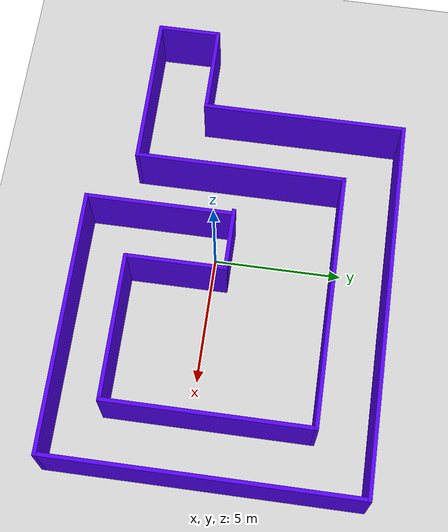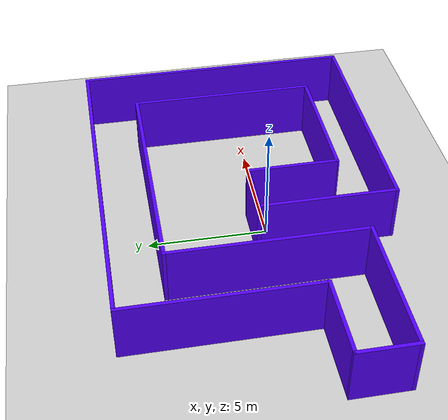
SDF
<sdf version="1.6">
 <world name="default">
  <light name="sun" type="directional">
   <pose>0 0 10 0 -0 0</pose>
   <diffuse>0.8 0.8 0.8 1</diffuse>
   <specular>0.1 0.1 0.1 1</specular>
   <attenuation>
    <range>1000</range>
    <constant>0.9</constant>
    <linear>0.01</linear>
    <quadratic>0.001</quadratic>
   </attenuation>
   <direction>-0.5 0.5 -1</direction>
  </light>
  <model name="ground_plane">
   <static>1</static>
   <link name="link">
    <collision name="collision">
     <geometry><plane><normal>0 0 1</normal><size>100 100</size></plane></geometry>
     <surface><friction><ode><mu>100</mu><mu2>50</mu2></ode></friction></surface>
    </collision>
    <visual name="visual">
     <cast_shadows>0</cast_shadows>
     <geometry><plane><normal>0 0 1</normal><size>100 100</size></plane></geometry>
     <material>
      <script><uri>file://media/materials/scripts/gazebo.material</uri><name>Gazebo/Grey</name></script>
     </material>
    </visual>
   </link>
  </model>
  <gravity>0 0 -9.8</gravity>
  <magnetic_field>6e-06 2.3e-05 -4.2e-05</magnetic_field>
  <atmosphere type="adiabatic"/>
  <physics name="default_physics" default="0" type="ode">
   <max_step_size>0.001</max_step_size>
   <real_time_factor>1</real_time_factor>
   <real_time_update_rate>1000</real_time_update_rate>
  </physics>
  <scene><ambient>0.4 0.4 0.4 1</ambient><background>0.7 0.7 0.7 1</background><shadows>1</shadows></scene>
  <spherical_coordinates>
   <surface_model>EARTH_WGS84</surface_model>
   <latitude_deg>0</latitude_deg>
   <longitude_deg>0</longitude_deg>
   <elevation>0</elevation>
   <heading_deg>0</heading_deg>
  </spherical_coordinates>
  <model name="Building2">
   <pose>0.038363 0.800444 0 0 -0 0</pose>
   <link name="Wall_0">
    <collision name="Wall_0_Collision">
     <geometry><box><size>2.5 0.15 2.5</size></box></geometry>
     <pose>0 0 1.25 0 -0 0</pose>
    </collision>
    <visual name="Wall_0_Visual">
     <pose>0 0 1.25 0 -0 0</pose>
     <geometry><box><size>2.5 0.15 2.5</size></box></geometry>
     <material>
      <script><uri>file://media/materials/scripts/gazebo.material</uri><name>Gazebo/Grey</name></script>
      <ambient>0.333333 0 1 1</ambient>
     </material>
    </visual>
    <pose>-0.060855 -0.224134 0 0 -0 0</pose>
   </link>
   <link name="Wall_1">
    <collision name="Wall_1_Collision">
     <geometry><box><size>3.95171 0.15 2.5</size></box></geometry>
     <pose>0 0 1.25 0 -0 0</pose>
    </collision>
    <visual name="Wall_1_Visual">
     <pose>0 0 1.25 0 -0 0</pose>
     <geometry><box><size>3.95171 0.15 2.5</size></box></geometry>
     <material>
      <script><uri>file://media/materials/scripts/gazebo.material</uri><name>Gazebo/Grey</name></script>
      <ambient>0.333333 0 1 1</ambient>
     </material>
    </visual>
    <pose>1.12335 -2.12457 0 0 0 -1.56993</pose>
   </link>
   <link name="Wall_10">
    <collision name="Wall_10_Collision">
     <geometry><box><size>14.75 0.15 2.5</size></box></geometry>
     <pose>0 0 1.25 0 -0 0</pose>
    </collision>
    <visual name="Wall_10_Visual">
     <pose>0 0 1.25 0 -0 0</pose>
     <geometry><box><size>14.75 0.15 2.5</size></box></geometry>
     <material>
      <script><uri>file://media/materials/scripts/gazebo.material</uri><name>Gazebo/Grey</name></script>
      <ambient>0.333333 0 1 1</ambient>
     </material>
    </visual>
    <pose>1.675 5.925 0 0 -0 0</pose>
   </link>
   <link name="Wall_11">
    <collision name="Wall_11_Collision">
     <geometry><box><size>12 0.15 2.5</size></box></geometry>
     <pose>0 0 1.25 0 -0 0</pose>
    </collision>
    <visual name="Wall_11_Visual">
     <pose>0 0 1.25 0 -0 0</pose>
     <geometry><box><size>12 0.15 2.5</size></box></geometry>
     <material>
      <script><uri>file://media/materials/scripts/gazebo.material</uri><name>Gazebo/Grey</name></script>
      <ambient>0.333333 0 1 1</ambient>
     </material>
    </visual>
    <pose>8.975 0 0 0 0 -1.5708</pose>
   </link>
   <link name="Wall_12">
    <collision name="Wall_12_Collision">
     <geometry><box><size>10.25 0.15 2.5</size></box></geometry>
     <pose>0 0 1.25 0 -0 0</pose>
    </collision>
    <visual name="Wall_12_Visual">
     <pose>0 0 1.25 0 -0 0</pose>
     <geometry><box><size>10.25 0.15 2.5</size></box></geometry>
     <material>
      <script><uri>file://media/materials/scripts/gazebo.material</uri><name>Gazebo/Grey</name></script>
      <ambient>0.333333 0 1 1</ambient>
     </material>
    </visual>
    <pose>3.925 -5.925 0 0 -0 3.14159</pose>
   </link>
   <link name="Wall_13">
    <collision name="Wall_13_Collision">
     <geometry><box><size>5.75 0.15 2.5</size></box></geometry>
     <pose>0 0 1.25 0 -0 0</pose>
    </collision>
    <visual name="Wall_13_Visual">
     <pose>0 0 1.25 0 -0 0</pose>
     <geometry><box><size>5.75 0.15 2.5</size></box></geometry>
     <material>
      <script><uri>file://media/materials/scripts/gazebo.material</uri><name>Gazebo/Grey</name></script>
      <ambient>0.333333 0 1 1</ambient>
     </material>
    </visual>
    <pose>-1.125 -3.125 0 0 -0 1.5708</pose>
   </link>
   <link name="Wall_2">
    <collision name="Wall_2_Collision">
     <geometry><box><size>5.75 0.15 2.5</size></box></geometry>
     <pose>0 0 1.25 0 -0 0</pose>
    </collision>
    <visual name="Wall_2_Visual">
     <pose>0 0 1.25 0 -0 0</pose>
     <geometry><box><size>5.75 0.15 2.5</size></box></geometry>
     <material>
      <script><uri>file://media/materials/scripts/gazebo.material</uri><name>Gazebo/Grey</name></script>
      <ambient>0.333333 0 1 1</ambient>
     </material>
    </visual>
    <pose>3.925 -4.025 0 0 -0 0</pose>
   </link>
   <link name="Wall_3">
    <collision name="Wall_3_Collision">
     <geometry><box><size>8 0.15 2.5</size></box></geometry>
     <pose>0 0 1.25 0 -0 0</pose>
    </collision>
    <visual name="Wall_3_Visual">
     <pose>0 0 1.25 0 -0 0</pose>
     <geometry><box><size>8 0.15 2.5</size></box></geometry>
     <material>
      <script><uri>file://media/materials/scripts/gazebo.material</uri><name>Gazebo/Grey</name></script>
      <ambient>0.333333 0 1 1</ambient>
     </material>
    </visual>
    <pose>6.725 -0.1 0 0 -0 1.5708</pose>
   </link>
   <link name="Wall_4">
    <collision name="Wall_4_Collision">
     <geometry><box><size>10 0.15 2.5</size></box></geometry>
     <pose>0 0 1.25 0 -0 0</pose>
    </collision>
    <visual name="Wall_4_Visual">
     <pose>0 0 1.25 0 -0 0</pose>
     <geometry><box><size>10 0.15 2.5</size></box></geometry>
     <material>
      <script><uri>file://media/materials/scripts/gazebo.material</uri><name>Gazebo/Grey</name></script>
      <ambient>0.333333 0 1 1</ambient>
     </material>
    </visual>
    <pose>1.8 3.825 0 0 -0 3.14159</pose>
   </link>
   <link name="Wall_5">
    <collision name="Wall_5_Collision">
     <geometry><box><size>8.25 0.15 2.5</size></box></geometry>
     <pose>0 0 1.25 0 -0 0</pose>
    </collision>
    <visual name="Wall_5_Visual">
     <pose>0 0 1.25 0 -0 0</pose>
     <geometry><box><size>8.25 0.15 2.5</size></box></geometry>
     <material>
      <script><uri>file://media/materials/scripts/gazebo.material</uri><name>Gazebo/Grey</name></script>
      <ambient>0.333333 0 1 1</ambient>
     </material>
    </visual>
    <pose>-3.125 -0.225 0 0 0 -1.5708</pose>
   </link>
   <link name="Wall_6">
    <collision name="Wall_6_Collision">
     <geometry><box><size>6 0.15 2.5</size></box></geometry>
     <pose>0 0 1.25 0 -0 0</pose>
    </collision>
    <visual name="Wall_6_Visual">
     <pose>0 0 1.25 0 -0 0</pose>
     <geometry><box><size>6 0.15 2.5</size></box></geometry>
     <material>
      <script><uri>file://media/materials/scripts/gazebo.material</uri><name>Gazebo/Grey</name></script>
      <ambient>0.333333 0 1 1</ambient>
     </material>
    </visual>
    <pose>-6.05 -4.275 0 0 -0 3.14159</pose>
   </link>
   <link name="Wall_7">
    <collision name="Wall_7_Collision">
     <geometry><box><size>2.5 0.15 2.5</size></box></geometry>
     <pose>0 0 1.25 0 -0 0</pose>
    </collision>
    <visual name="Wall_7_Visual">
     <pose>0 0 1.25 0 -0 0</pose>
     <geometry><box><size>2.5 0.15 2.5</size></box></geometry>
     <material>
      <script><uri>file://media/materials/scripts/gazebo.material</uri><name>Gazebo/Grey</name></script>
      <ambient>0.333333 0 1 1</ambient>
     </material>
    </visual>
    <pose>-8.975 -3.1 0 0 -0 1.5708</pose>
   </link>
   <link name="Wall_8">
    <collision name="Wall_8_Collision">
     <geometry><box><size>3.5 0.15 2.5</size></box></geometry>
     <pose>0 0 1.25 0 -0 0</pose>
    </collision>
    <visual name="Wall_8_Visual">
     <pose>0 0 1.25 0 -0 0</pose>
     <geometry><box><size>3.5 0.15 2.5</size></box></geometry>
     <material>
      <script><uri>file://media/materials/scripts/gazebo.material</uri><name>Gazebo/Grey</name></script>
      <ambient>0.333333 0 1 1</ambient>
     </material>
    </visual>
    <pose>-7.3 -1.925 0 0 -0 0</pose>
   </link>
   <link name="Wall_9">
    <collision name="Wall_9_Collision">
     <geometry><box><size>8 0.15 2.5</size></box></geometry>
     <pose>0 0 1.25 0 -0 0</pose>
    </collision>
    <visual name="Wall_9_Visual">
     <pose>0 0 1.25 0 -0 0</pose>
     <geometry><box><size>8 0.15 2.5</size></box></geometry>
     <material>
      <script><uri>file://media/materials/scripts/gazebo.material</uri><name>Gazebo/Grey</name></script>
      <ambient>0.333333 0 1 1</ambient>
     </material>
    </visual>
    <pose>-5.625 2 0 0 -0 1.5708</pose>
   </link>
   <static>1</static>
  </model>
 </world>
</sdf>
